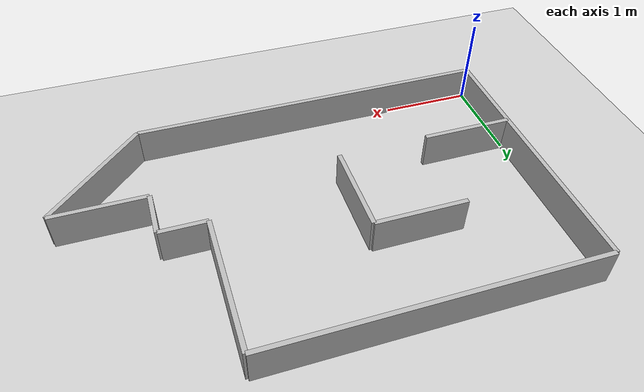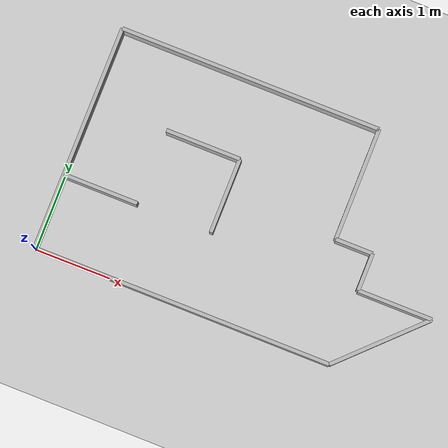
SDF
<?xml version='1.0'?>
<sdf version='1.7'>
  <world name='swarmlab'>

    <!-- Basic Environment -->
    <include>
      <uri>https://fuel.gazebosim.org/1.0/OpenRobotics/models/Ground Plane</uri>
    </include>
    <include>
      <uri>https://fuel.gazebosim.org/1.0/OpenRobotics/models/Sun</uri>
    </include>

    <!-- Physics -->
    <gravity>0 0 -9.8</gravity>
    <atmosphere type='adiabatic'/>
    <wind/>
    <physics type='ode'>
      <max_step_size>0.002</max_step_size>
      <real_time_factor>5</real_time_factor>
      <real_time_update_rate>2500</real_time_update_rate>
    </physics>

    <!-- Rendering -->
    <scene>
      <ambient>0.4 0.4 0.4 1</ambient>
      <background>0.7 0.7 0.7 1</background>
      <shadows>1</shadows>
    </scene>

    <!-- GPS (remove?) -->
    <spherical_coordinates>
      <surface_model>EARTH_WGS84</surface_model>
      <latitude_deg>0</latitude_deg>
      <longitude_deg>0</longitude_deg>
      <elevation>0</elevation>
      <heading_deg>0</heading_deg>
    </spherical_coordinates>

    <!-- Lab Model (remove) -->

    <!-- Lab Model -->
    <!-- We assume the North-Eastern corner is the origin (this is the corner closest to the TV), +x is West, +y is South -->
      <model name="wall_east">
        <static>1</static>
        <pose>0 1.5 0.20 0 0 0</pose>
        <link name="link">
          <collision name="collision">
            <geometry><box><size>0.05 3.0 0.4</size></box></geometry>
          </collision>
          <visual name="visual">
            <geometry><box><size>0.05 3.0 0.4</size></box></geometry>
          </visual>
        </link>
      </model>

      <model name="wall_south">
        <static>1</static>
        <pose>1.75 3 0.20 0 0 0</pose>
        <link name="link">
          <collision name="collision">
            <geometry><box><size>3.5 0.05 0.4</size></box></geometry>
          </collision>
          <visual name="visual">
            <geometry><box><size>3.5 0.05 0.4</size></box></geometry>
          </visual>
        </link>
      </model>

      <model name="wall_north">
        <static>1</static>
        <pose>2 0 0.20 0 0 0</pose>
        <link name="link">
          <collision name="collision">
            <geometry><box><size>4 0.05 0.4</size></box></geometry>
          </collision>
          <visual name="visual">
            <geometry><box><size>4 0.05 0.4</size></box></geometry>
          </visual>
        </link>
      </model>

      <model name="wall_west_south_y">
        <static>1</static>
        <pose>3.5 2.25 0.20 0 0 0</pose>
        <link name="link">
          <collision name="collision">
            <geometry><box><size>0.05 1.5 0.4</size></box></geometry>
          </collision>
          <visual name="visual">
            <geometry><box><size>0.05 1.5 0.4</size></box></geometry>
          </visual>
        </link>
      </model>

      <model name="wall_west_south_x">
        <static>1</static>
        <pose> 3.75 1.5 0.20 0 0 0</pose>
        <link name="link">
          <collision name="collision">
            <geometry><box><size>0.5 0.05 0.4</size></box></geometry>
          </collision>
          <visual name="visual">
            <geometry><box><size>0.5 0.05 0.4</size></box></geometry>
          </visual>
        </link>
      </model>

      <model name="wall_west_north_y">
        <static>1</static>
        <pose>4 1.25 0.20 0 0 0</pose>
        <link name="link">
          <collision name="collision">
            <geometry><box><size>0.05 0.5 0.4</size></box></geometry>
          </collision>
          <visual name="visual">
            <geometry><box><size>0.05 0.5 0.4</size></box></geometry>
          </visual>
        </link>
      </model>

      <model name="wall_triangle_x">
        <static>1</static>
        <pose>4.5 1 0.20 0 0 0</pose>
        <link name="link">
          <collision name="collision">
            <geometry><box><size>1 0.05 0.4</size></box></geometry>
          </collision>
          <visual name="visual">
            <geometry><box><size>1 0.05 0.4</size></box></geometry>
          </visual>
        </link>
      </model>

      <model name="wall_triangle_hyp">
        <static>1</static>
        <pose>4.5 0.5 0.20 0 0 0.78539816</pose>
        <link name="link">
          <collision name="collision">
            <geometry><box><size>1.41421356 0.05 0.4</size></box></geometry>
          </collision>
          <visual name="visual">
            <geometry><box><size>1.41421356 0.05 0.4</size></box></geometry>
          </visual>
        </link>
      </model>

      <model name="wall_obstacle_north_x">
        <static>1</static>
        <pose>0.5 1 0.20 0 0 0</pose>
        <link name="link">
          <collision name="collision">
            <geometry><box><size>1 0.05 0.4</size></box></geometry>
          </collision>
          <visual name="visual">
            <geometry><box><size>1 0.05 0.4</size></box></geometry>
          </visual>
        </link>
      </model>

      <model name="wall_obstacle_south_x">
        <static>1</static>
        <pose>1.5 2 0.20 0 0 0</pose>
        <link name="link">
          <collision name="collision">
            <geometry><box><size>1 0.05 0.4</size></box></geometry>
          </collision>
          <visual name="visual">
            <geometry><box><size>1 0.05 0.4</size></box></geometry>
          </visual>
        </link>
      </model>

      <model name="wall_obstacle_y">
        <static>1</static>
        <pose>2 1.5 0.20 0 0 0</pose>
        <link name="link">
          <collision name="collision">
            <geometry><box><size>0.05 1 0.4</size></box></geometry>
          </collision>
          <visual name="visual">
            <geometry><box><size>0.05 1 0.4</size></box></geometry>
          </visual>
        </link>
      </model>

    <!-- Default Camera View -->
    <gui fullscreen='0'>
      <camera name='user_camera'>
        <pose>1.08306 -4.33385 3.73164 0 0.769797 1.5722</pose>
        <view_controller>orbit</view_controller>
        <projection_type>perspective</projection_type>
      </camera>
    </gui>

  </world>
</sdf>
